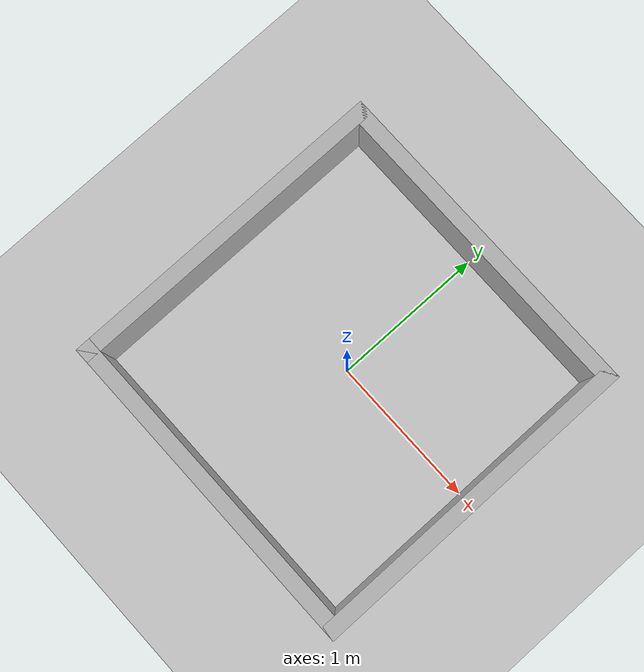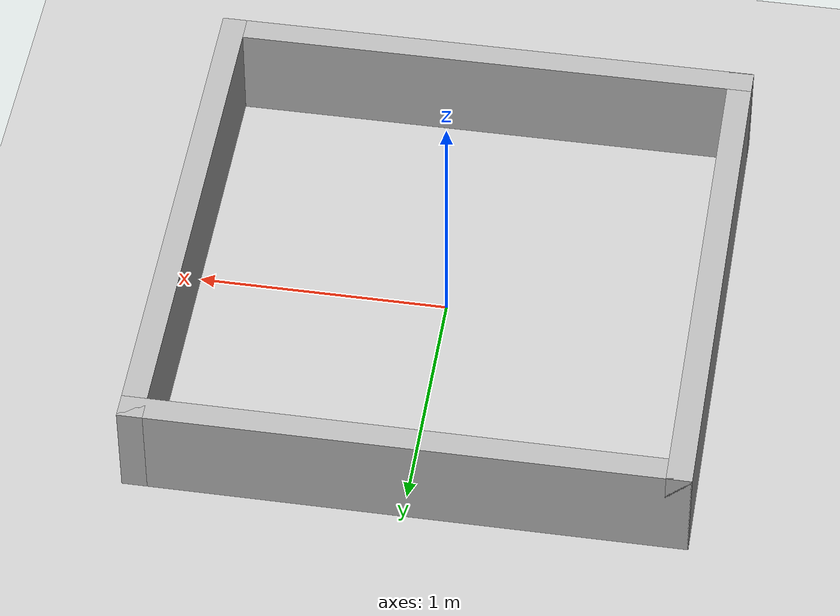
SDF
<?xml version="1.0"?>
<sdf version="1.6">
  <world name="default">

    <include>
      <uri>model://ground_plane</uri>
    </include>

    <include>
      <uri>model://sun</uri>
    </include>

    <physics type="ode">
      <real_time_update_rate>1000</real_time_update_rate>
      <max_step_size>0.001</max_step_size>
    </physics>

    <!-- LEFT WALL -->
    <model name="left_wall">
      <static>true</static>
      <pose>-1.05 0 0.2 0 0 0</pose>
      <link name="link">
        <collision name="collision">
          <geometry>
            <box>
              <size>0.1 2.2 0.4</size>
            </box>
          </geometry>
        </collision>
        <visual name="visual">
          <geometry>
            <box>
              <size>0.1 2.2 0.4</size>
            </box>
          </geometry>
        </visual>
      </link>
    </model>

    <!-- RIGHT WALL -->
    <model name="right_wall">
      <static>true</static>
      <pose>1.05 0 0.2 0 0 0</pose>
      <link name="link">
        <collision name="collision">
          <geometry>
            <box>
              <size>0.1 2.2 0.4</size>
            </box>
          </geometry>
        </collision>
        <visual name="visual">
          <geometry>
            <box>
              <size>0.1 2.2 0.4</size>
            </box>
          </geometry>
        </visual>
      </link>
    </model>

    <!-- TOP WALL -->
    <model name="top_wall">
      <static>true</static>
      <pose>0 1.05 0.2 0 0 0</pose>
      <link name="link">
        <collision name="collision">
          <geometry>
            <box>
              <size>2.2 0.1 0.4</size>
            </box>
          </geometry>
        </collision>
        <visual name="visual">
          <geometry>
            <box>
              <size>2.2 0.1 0.4</size>
            </box>
          </geometry>
        </visual>
      </link>
    </model>

    <!-- BOTTOM WALL -->
    <model name="bottom_wall">
      <static>true</static>
      <pose>0 -1.05 0.2 0 0 0</pose>
      <link name="link">
        <collision name="collision">
          <geometry>
            <box>
              <size>2.2 0.1 0.4</size>
            </box>
          </geometry>
        </collision>
        <visual name="visual">
          <geometry>
            <box>
              <size>2.2 0.1 0.4</size>
            </box>
          </geometry>
        </visual>
      </link>
    </model>

  </world>
</sdf>
